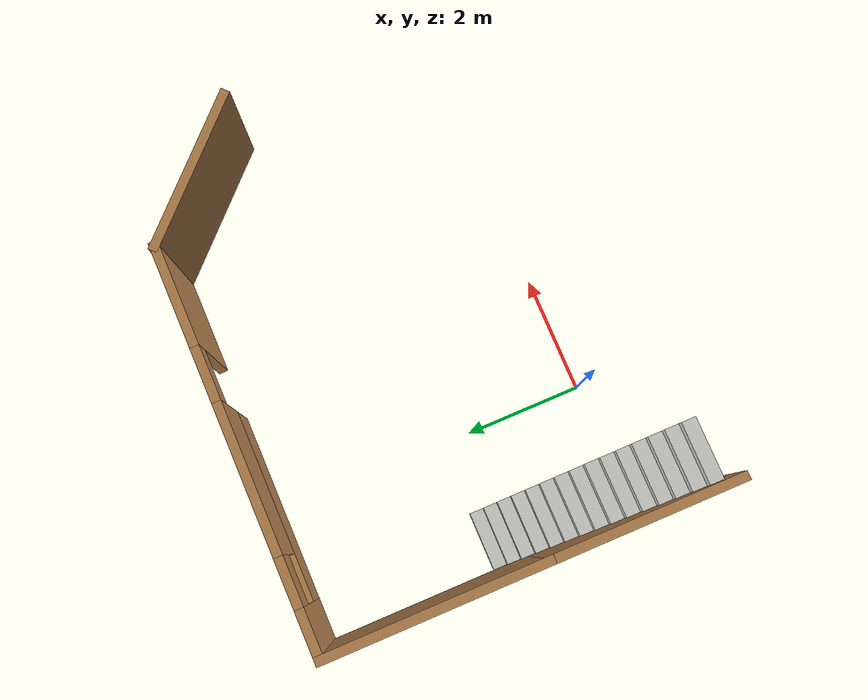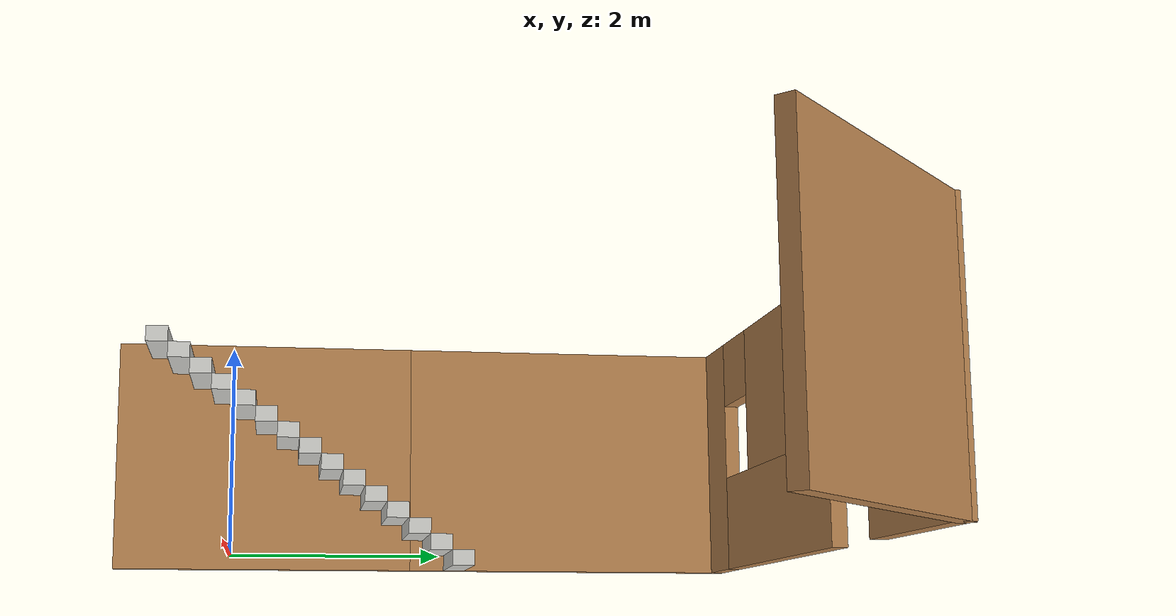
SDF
<?xml version='1.0'?>
<sdf version='1.7'>
  <model name='habitacion'>
    <pose>1.89927 2.10953 0 0 -0 0</pose>
    <link name='Stairs_0'>
      <visual name='Stairs_0_Visual_0'>
        <pose>-3.64827 0.2988 0.083333 0 -0 0</pose>
        <geometry>
          <box>
            <size>1 0.233333 0.166667</size>
          </box>
        </geometry>
        <material>
          <script>
            <uri>file://media/materials/scripts/gazebo.material</uri>
            <name>Gazebo/CeilingTiled</name>
          </script>
          <ambient>1 1 1 1</ambient>
        </material>
        <meta>
          <layer>0</layer>
        </meta>
      </visual>
      <collision name='Stairs_0_Collision_0'>
        <geometry>
          <box>
            <size>1 0.233333 0.166667</size>
          </box>
        </geometry>
        <pose>-3.64827 0.2988 0.083333 0 -0 0</pose>
      </collision>
      <visual name='Stairs_0_Visual_1'>
        <pose>-3.64827 0.065467 0.25 0 -0 0</pose>
        <geometry>
          <box>
            <size>1 0.233333 0.166667</size>
          </box>
        </geometry>
        <material>
          <script>
            <uri>file://media/materials/scripts/gazebo.material</uri>
            <name>Gazebo/CeilingTiled</name>
          </script>
          <ambient>1 1 1 1</ambient>
        </material>
        <meta>
          <layer>0</layer>
        </meta>
      </visual>
      <collision name='Stairs_0_Collision_1'>
        <geometry>
          <box>
            <size>1 0.233333 0.166667</size>
          </box>
        </geometry>
        <pose>-3.64827 0.065467 0.25 0 -0 0</pose>
      </collision>
      <visual name='Stairs_0_Visual_2'>
        <pose>-3.64827 -0.167866 0.416667 0 -0 0</pose>
        <geometry>
          <box>
            <size>1 0.233333 0.166667</size>
          </box>
        </geometry>
        <material>
          <script>
            <uri>file://media/materials/scripts/gazebo.material</uri>
            <name>Gazebo/CeilingTiled</name>
          </script>
          <ambient>1 1 1 1</ambient>
        </material>
        <meta>
          <layer>0</layer>
        </meta>
      </visual>
      <collision name='Stairs_0_Collision_2'>
        <geometry>
          <box>
            <size>1 0.233333 0.166667</size>
          </box>
        </geometry>
        <pose>-3.64827 -0.167866 0.416667 0 -0 0</pose>
      </collision>
      <visual name='Stairs_0_Visual_3'>
        <pose>-3.64827 -0.4012 0.583333 0 -0 0</pose>
        <geometry>
          <box>
            <size>1 0.233333 0.166667</size>
          </box>
        </geometry>
        <material>
          <script>
            <uri>file://media/materials/scripts/gazebo.material</uri>
            <name>Gazebo/CeilingTiled</name>
          </script>
          <ambient>1 1 1 1</ambient>
        </material>
        <meta>
          <layer>0</layer>
        </meta>
      </visual>
      <collision name='Stairs_0_Collision_3'>
        <geometry>
          <box>
            <size>1 0.233333 0.166667</size>
          </box>
        </geometry>
        <pose>-3.64827 -0.4012 0.583333 0 -0 0</pose>
      </collision>
      <visual name='Stairs_0_Visual_4'>
        <pose>-3.64827 -0.634533 0.75 0 -0 0</pose>
        <geometry>
          <box>
            <size>1 0.233333 0.166667</size>
          </box>
        </geometry>
        <material>
          <script>
            <uri>file://media/materials/scripts/gazebo.material</uri>
            <name>Gazebo/CeilingTiled</name>
          </script>
          <ambient>1 1 1 1</ambient>
        </material>
        <meta>
          <layer>0</layer>
        </meta>
      </visual>
      <collision name='Stairs_0_Collision_4'>
        <geometry>
          <box>
            <size>1 0.233333 0.166667</size>
          </box>
        </geometry>
        <pose>-3.64827 -0.634533 0.75 0 -0 0</pose>
      </collision>
      <visual name='Stairs_0_Visual_5'>
        <pose>-3.64827 -0.867866 0.916667 0 -0 0</pose>
        <geometry>
          <box>
            <size>1 0.233333 0.166667</size>
          </box>
        </geometry>
        <material>
          <script>
            <uri>file://media/materials/scripts/gazebo.material</uri>
            <name>Gazebo/CeilingTiled</name>
          </script>
          <ambient>1 1 1 1</ambient>
        </material>
        <meta>
          <layer>0</layer>
        </meta>
      </visual>
      <collision name='Stairs_0_Collision_5'>
        <geometry>
          <box>
            <size>1 0.233333 0.166667</size>
          </box>
        </geometry>
        <pose>-3.64827 -0.867866 0.916667 0 -0 0</pose>
      </collision>
      <visual name='Stairs_0_Visual_6'>
        <pose>-3.64827 -1.1012 1.08333 0 -0 0</pose>
        <geometry>
          <box>
            <size>1 0.233333 0.166667</size>
          </box>
        </geometry>
        <material>
          <script>
            <uri>file://media/materials/scripts/gazebo.material</uri>
            <name>Gazebo/CeilingTiled</name>
          </script>
          <ambient>1 1 1 1</ambient>
        </material>
        <meta>
          <layer>0</layer>
        </meta>
      </visual>
      <collision name='Stairs_0_Collision_6'>
        <geometry>
          <box>
            <size>1 0.233333 0.166667</size>
          </box>
        </geometry>
        <pose>-3.64827 -1.1012 1.08333 0 -0 0</pose>
      </collision>
      <visual name='Stairs_0_Visual_7'>
        <pose>-3.64827 -1.33453 1.25 0 -0 0</pose>
        <geometry>
          <box>
            <size>1 0.233333 0.166667</size>
          </box>
        </geometry>
        <material>
          <script>
            <uri>file://media/materials/scripts/gazebo.material</uri>
            <name>Gazebo/CeilingTiled</name>
          </script>
          <ambient>1 1 1 1</ambient>
        </material>
        <meta>
          <layer>0</layer>
        </meta>
      </visual>
      <collision name='Stairs_0_Collision_7'>
        <geometry>
          <box>
            <size>1 0.233333 0.166667</size>
          </box>
        </geometry>
        <pose>-3.64827 -1.33453 1.25 0 -0 0</pose>
      </collision>
      <visual name='Stairs_0_Visual_8'>
        <pose>-3.64827 -1.56787 1.41667 0 -0 0</pose>
        <geometry>
          <box>
            <size>1 0.233333 0.166667</size>
          </box>
        </geometry>
        <material>
          <script>
            <uri>file://media/materials/scripts/gazebo.material</uri>
            <name>Gazebo/CeilingTiled</name>
          </script>
          <ambient>1 1 1 1</ambient>
        </material>
        <meta>
          <layer>0</layer>
        </meta>
      </visual>
      <collision name='Stairs_0_Collision_8'>
        <geometry>
          <box>
            <size>1 0.233333 0.166667</size>
          </box>
        </geometry>
        <pose>-3.64827 -1.56787 1.41667 0 -0 0</pose>
      </collision>
      <visual name='Stairs_0_Visual_9'>
        <pose>-3.64827 -1.8012 1.58333 0 -0 0</pose>
        <geometry>
          <box>
            <size>1 0.233333 0.166667</size>
          </box>
        </geometry>
        <material>
          <script>
            <uri>file://media/materials/scripts/gazebo.material</uri>
            <name>Gazebo/CeilingTiled</name>
          </script>
          <ambient>1 1 1 1</ambient>
        </material>
        <meta>
          <layer>0</layer>
        </meta>
      </visual>
      <collision name='Stairs_0_Collision_9'>
        <geometry>
          <box>
            <size>1 0.233333 0.166667</size>
          </box>
        </geometry>
        <pose>-3.64827 -1.8012 1.58333 0 -0 0</pose>
      </collision>
      <visual name='Stairs_0_Visual_10'>
        <pose>-3.64827 -2.03453 1.75 0 -0 0</pose>
        <geometry>
          <box>
            <size>1 0.233333 0.166667</size>
          </box>
        </geometry>
        <material>
          <script>
            <uri>file://media/materials/scripts/gazebo.material</uri>
            <name>Gazebo/CeilingTiled</name>
          </script>
          <ambient>1 1 1 1</ambient>
        </material>
        <meta>
          <layer>0</layer>
        </meta>
      </visual>
      <collision name='Stairs_0_Collision_10'>
        <geometry>
          <box>
            <size>1 0.233333 0.166667</size>
          </box>
        </geometry>
        <pose>-3.64827 -2.03453 1.75 0 -0 0</pose>
      </collision>
      <visual name='Stairs_0_Visual_11'>
        <pose>-3.64827 -2.26787 1.91667 0 -0 0</pose>
        <geometry>
          <box>
            <size>1 0.233333 0.166667</size>
          </box>
        </geometry>
        <material>
          <script>
            <uri>file://media/materials/scripts/gazebo.material</uri>
            <name>Gazebo/CeilingTiled</name>
          </script>
          <ambient>1 1 1 1</ambient>
        </material>
        <meta>
          <layer>0</layer>
        </meta>
      </visual>
      <collision name='Stairs_0_Collision_11'>
        <geometry>
          <box>
            <size>1 0.233333 0.166667</size>
          </box>
        </geometry>
        <pose>-3.64827 -2.26787 1.91667 0 -0 0</pose>
      </collision>
      <visual name='Stairs_0_Visual_12'>
        <pose>-3.64827 -2.5012 2.08333 0 -0 0</pose>
        <geometry>
          <box>
            <size>1 0.233333 0.166667</size>
          </box>
        </geometry>
        <material>
          <script>
            <uri>file://media/materials/scripts/gazebo.material</uri>
            <name>Gazebo/CeilingTiled</name>
          </script>
          <ambient>1 1 1 1</ambient>
        </material>
        <meta>
          <layer>0</layer>
        </meta>
      </visual>
      <collision name='Stairs_0_Collision_12'>
        <geometry>
          <box>
            <size>1 0.233333 0.166667</size>
          </box>
        </geometry>
        <pose>-3.64827 -2.5012 2.08333 0 -0 0</pose>
      </collision>
      <visual name='Stairs_0_Visual_13'>
        <pose>-3.64827 -2.73453 2.25 0 -0 0</pose>
        <geometry>
          <box>
            <size>1 0.233333 0.166667</size>
          </box>
        </geometry>
        <material>
          <script>
            <uri>file://media/materials/scripts/gazebo.material</uri>
            <name>Gazebo/CeilingTiled</name>
          </script>
          <ambient>1 1 1 1</ambient>
        </material>
        <meta>
          <layer>0</layer>
        </meta>
      </visual>
      <collision name='Stairs_0_Collision_13'>
        <geometry>
          <box>
            <size>1 0.233333 0.166667</size>
          </box>
        </geometry>
        <pose>-3.64827 -2.73453 2.25 0 -0 0</pose>
      </collision>
      <visual name='Stairs_0_Visual_14'>
        <pose>-3.64827 -2.96787 2.41667 0 -0 0</pose>
        <geometry>
          <box>
            <size>1 0.233333 0.166667</size>
          </box>
        </geometry>
        <material>
          <script>
            <uri>file://media/materials/scripts/gazebo.material</uri>
            <name>Gazebo/CeilingTiled</name>
          </script>
          <ambient>1 1 1 1</ambient>
        </material>
        <meta>
          <layer>0</layer>
        </meta>
      </visual>
      <collision name='Stairs_0_Collision_14'>
        <geometry>
          <box>
            <size>1 0.233333 0.166667</size>
          </box>
        </geometry>
        <pose>-3.64827 -2.96787 2.41667 0 -0 0</pose>
      </collision>
    </link>
    <link name='Wall_2'>
      <collision name='Wall_2_Collision'>
        <geometry>
          <box>
            <size>3.75 0.15 2.5</size>
          </box>
        </geometry>
        <pose>0 0 1.25 0 -0 0</pose>
      </collision>
      <visual name='Wall_2_Visual'>
        <pose>0 0 1.25 0 -0 0</pose>
        <geometry>
          <box>
            <size>3.75 0.15 2.5</size>
          </box>
        </geometry>
        <material>
          <script>
            <uri>file://media/materials/scripts/gazebo.material</uri>
            <name>Gazebo/Wood</name>
          </script>
          <ambient>1 1 1 1</ambient>
        </material>
        <meta>
          <layer>0</layer>
        </meta>
      </visual>
      <pose>-4.23477 1.53447 0 0 -0 -1.5708</pose>
    </link>
    <link name='Wall_5'>
      <pose>-0.934772 3.33447 0 0 -0 0</pose>
      <visual name='Wall_5_Visual_0'>
        <pose>-2.94525 0 1.25 0 -0 0</pose>
        <geometry>
          <box>
            <size>0.8595 0.15 2.5</size>
          </box>
        </geometry>
        <material>
          <script>
            <uri>file://media/materials/scripts/gazebo.material</uri>
            <name>Gazebo/Wood</name>
          </script>
          <ambient>1 1 1 1</ambient>
        </material>
        <meta>
          <layer>0</layer>
        </meta>
      </visual>
      <collision name='Wall_5_Collision_0'>
        <geometry>
          <box>
            <size>0.8595 0.15 2.5</size>
          </box>
        </geometry>
        <pose>-2.94525 0 1.25 0 -0 0</pose>
      </collision>
      <visual name='Wall_5_Visual_1'>
        <pose>2.505 0 1.25 0 -0 0</pose>
        <geometry>
          <box>
            <size>1.74 0.15 2.5</size>
          </box>
        </geometry>
        <material>
          <script>
            <uri>file://media/materials/scripts/gazebo.material</uri>
            <name>Gazebo/Wood</name>
          </script>
          <ambient>1 1 1 1</ambient>
        </material>
        <meta>
          <layer>0</layer>
        </meta>
      </visual>
      <collision name='Wall_5_Collision_1'>
        <geometry>
          <box>
            <size>1.74 0.15 2.5</size>
          </box>
        </geometry>
        <pose>2.505 0 1.25 0 -0 0</pose>
      </collision>
      <visual name='Wall_5_Visual_2'>
        <pose>-0.89025 0 0.5 0 -0 0</pose>
        <geometry>
          <box>
            <size>3.2505 0.15 1</size>
          </box>
        </geometry>
        <material>
          <script>
            <uri>file://media/materials/scripts/gazebo.material</uri>
            <name>Gazebo/Wood</name>
          </script>
          <ambient>1 1 1 1</ambient>
        </material>
        <meta>
          <layer>0</layer>
        </meta>
      </visual>
      <collision name='Wall_5_Collision_2'>
        <geometry>
          <box>
            <size>3.2505 0.15 1</size>
          </box>
        </geometry>
        <pose>-0.89025 0 0.5 0 -0 0</pose>
      </collision>
      <visual name='Wall_5_Visual_3'>
        <pose>-0.49025 0 1.75 0 -0 0</pose>
        <geometry>
          <box>
            <size>2.4505 0.15 1.5</size>
          </box>
        </geometry>
        <material>
          <script>
            <uri>file://media/materials/scripts/gazebo.material</uri>
            <name>Gazebo/Wood</name>
          </script>
          <ambient>1 1 1 1</ambient>
        </material>
        <meta>
          <layer>0</layer>
        </meta>
      </visual>
      <collision name='Wall_5_Collision_3'>
        <geometry>
          <box>
            <size>2.4505 0.15 1.5</size>
          </box>
        </geometry>
        <pose>-0.49025 0 1.75 0 -0 0</pose>
      </collision>
      <visual name='Wall_5_Visual_4'>
        <pose>-2.1155 0 2.15 0 -0 0</pose>
        <geometry>
          <box>
            <size>0.8 0.15 0.7</size>
          </box>
        </geometry>
        <material>
          <script>
            <uri>file://media/materials/scripts/gazebo.material</uri>
            <name>Gazebo/Wood</name>
          </script>
          <ambient>1 1 1 1</ambient>
        </material>
        <meta>
          <layer>0</layer>
        </meta>
      </visual>
      <collision name='Wall_5_Collision_4'>
        <geometry>
          <box>
            <size>0.8 0.15 0.7</size>
          </box>
        </geometry>
        <pose>-2.1155 0 2.15 0 -0 0</pose>
      </collision>
      <visual name='Wall_5_Visual_5'>
        <pose>1.185 0 2.25 0 -0 0</pose>
        <geometry>
          <box>
            <size>0.9 0.15 0.5</size>
          </box>
        </geometry>
        <material>
          <script>
            <uri>file://media/materials/scripts/gazebo.material</uri>
            <name>Gazebo/Wood</name>
          </script>
          <ambient>1 1 1 1</ambient>
        </material>
        <meta>
          <layer>0</layer>
        </meta>
      </visual>
      <collision name='Wall_5_Collision_5'>
        <geometry>
          <box>
            <size>0.9 0.15 0.5</size>
          </box>
        </geometry>
        <pose>1.185 0 2.25 0 -0 0</pose>
      </collision>
    </link>
    <link name='Wall_6'>
      <collision name='Wall_6_Collision'>
        <geometry>
          <box>
            <size>2.75 0.15 2.5</size>
          </box>
        </geometry>
        <pose>0 0 1.25 0 -0 0</pose>
      </collision>
      <visual name='Wall_6_Visual'>
        <pose>0 0 1.25 0 -0 0</pose>
        <geometry>
          <box>
            <size>2.75 0.15 2.5</size>
          </box>
        </geometry>
        <material>
          <script>
            <uri>file://media/materials/scripts/gazebo.material</uri>
            <name>Gazebo/Wood</name>
          </script>
          <ambient>1 1 1 1</ambient>
        </material>
        <meta>
          <layer>0</layer>
        </meta>
      </visual>
      <pose>3.28447 2.41523 0 0 -0 -0.785398</pose>
    </link>
    <link name='Wall_8'>
      <collision name='Wall_8_Collision'>
        <geometry>
          <box>
            <size>3.25 0.15 2.5</size>
          </box>
        </geometry>
        <pose>0 0 1.25 0 -0 0</pose>
      </collision>
      <visual name='Wall_8_Visual'>
        <pose>0 0 1.25 0 -0 0</pose>
        <geometry>
          <box>
            <size>3.25 0.15 2.5</size>
          </box>
        </geometry>
        <material>
          <script>
            <uri>file://media/materials/scripts/gazebo.material</uri>
            <name>Gazebo/Wood</name>
          </script>
          <ambient>1 1 1 1</ambient>
        </material>
        <meta>
          <layer>0</layer>
        </meta>
      </visual>
      <pose>-4.23477 -1.81553 0 0 -0 -1.5708</pose>
    </link>
    <static>1</static>
  </model>
</sdf>
